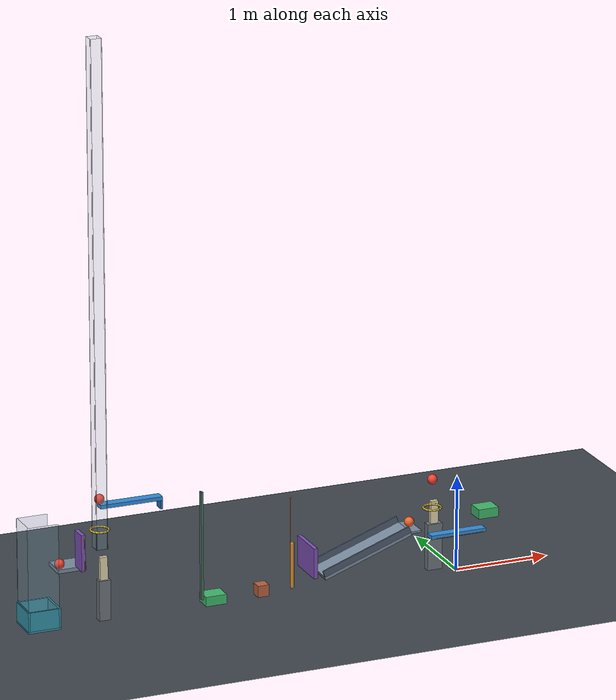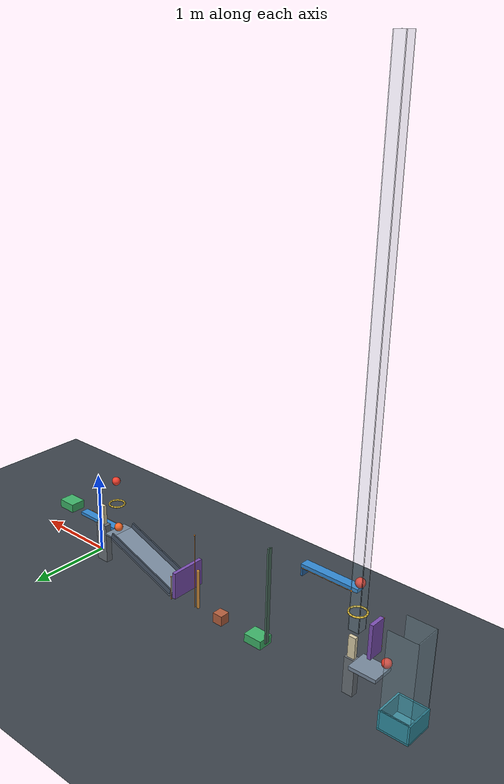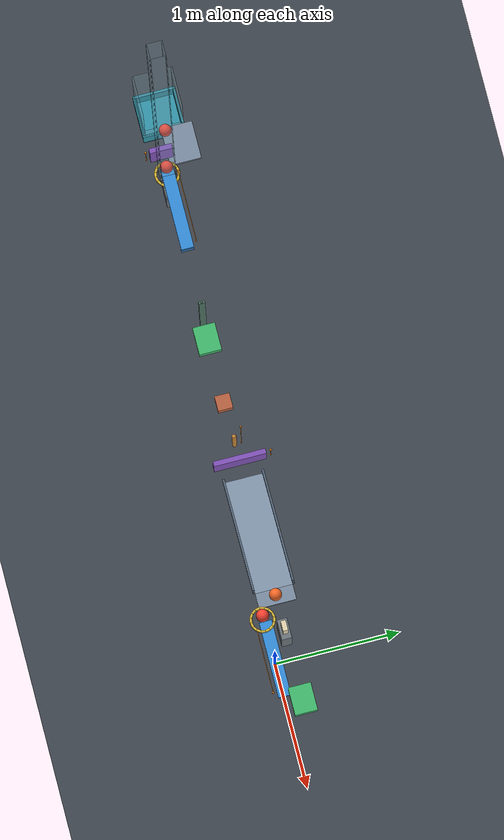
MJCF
<mujoco model="spring_assisted_chain">
  <compiler angle="degree" autolimits="true"/>
  <option timestep="0.002" gravity="0 0 -9.81" integrator="implicitfast" cone="elliptic" solver="Newton" iterations="100" tolerance="1e-10"/>

  <visual>
    <headlight ambient="0.35 0.35 0.35" diffuse="0.65 0.65 0.65" specular="0.15 0.15 0.15"/>
    <map znear="0.01" zfar="30"/>
  </visual>

  <!-- Passive, spring-assisted implementation; the full cascade is not simulation-verified. -->
  <!-- MuJoCo has compliant contacts rather than a direct restitution coefficient. -->
  <!-- solref damping ratio 0.7156 approximates restitution 0.04. -->
  <!-- All initial velocities are zero. Springs supply energy only after mechanical triggering. -->

  <worldbody>
    <light name="scene_light" pos="-1.5 -3 7" dir="0 0.3 -1" diffuse="0.8 0.8 0.8"/>
    <camera name="overview" pos="-1.8 -6 3.8" xyaxes="1 0 0 0 0.48 0.877268"/>
    <geom name="floor" type="plane" pos="0 0 0" size="10 5 0.1" friction="0.72 0.005 0.0001" condim="6" solref="0.004 0.7156" rgba="0.24 0.27 0.30 1"/>

    <!-- Ball1 starts 0.30 m above ring1. Its initial lever-contact center is 0.25 m below ring1. -->
    <body name="ball1" pos="-0.285 -0.025 1.022020">
      <freejoint name="ball1_free"/>
      <geom name="ball1_sphere" type="sphere" size="0.05" mass="0.20" friction="0.72 0.005 0.0001" condim="6" solref="0.004 0.7156" rgba="0.95 0.25 0.18 1"/>
    </body>

    <!-- Capsule centerlines form a polygon with an approximately 0.16 m clear diameter. -->
    <body name="ring1" pos="-0.285 -0.025 0.722020">
      <geom name="ring1_segment00" type="capsule" fromto="0.0917632 0 0 0.0847781 0.0351163 0" size="0.01" friction="0.72 0.005 0.0001" condim="6" solref="0.004 0.7156" rgba="0.85 0.72 0.22 1"/>
      <geom name="ring1_segment01" type="capsule" fromto="0.0847781 0.0351163 0 0.0648864 0.0648864 0" size="0.01" friction="0.72 0.005 0.0001" condim="6" solref="0.004 0.7156" rgba="0.85 0.72 0.22 1"/>
      <geom name="ring1_segment02" type="capsule" fromto="0.0648864 0.0648864 0 0.0351163 0.0847781 0" size="0.01" friction="0.72 0.005 0.0001" condim="6" solref="0.004 0.7156" rgba="0.85 0.72 0.22 1"/>
      <geom name="ring1_segment03" type="capsule" fromto="0.0351163 0.0847781 0 0 0.0917632 0" size="0.01" friction="0.72 0.005 0.0001" condim="6" solref="0.004 0.7156" rgba="0.85 0.72 0.22 1"/>
      <geom name="ring1_segment04" type="capsule" fromto="0 0.0917632 0 -0.0351163 0.0847781 0" size="0.01" friction="0.72 0.005 0.0001" condim="6" solref="0.004 0.7156" rgba="0.85 0.72 0.22 1"/>
      <geom name="ring1_segment05" type="capsule" fromto="-0.0351163 0.0847781 0 -0.0648864 0.0648864 0" size="0.01" friction="0.72 0.005 0.0001" condim="6" solref="0.004 0.7156" rgba="0.85 0.72 0.22 1"/>
      <geom name="ring1_segment06" type="capsule" fromto="-0.0648864 0.0648864 0 -0.0847781 0.0351163 0" size="0.01" friction="0.72 0.005 0.0001" condim="6" solref="0.004 0.7156" rgba="0.85 0.72 0.22 1"/>
      <geom name="ring1_segment07" type="capsule" fromto="-0.0847781 0.0351163 0 -0.0917632 0 0" size="0.01" friction="0.72 0.005 0.0001" condim="6" solref="0.004 0.7156" rgba="0.85 0.72 0.22 1"/>
      <geom name="ring1_segment08" type="capsule" fromto="-0.0917632 0 0 -0.0847781 -0.0351163 0" size="0.01" friction="0.72 0.005 0.0001" condim="6" solref="0.004 0.7156" rgba="0.85 0.72 0.22 1"/>
      <geom name="ring1_segment09" type="capsule" fromto="-0.0847781 -0.0351163 0 -0.0648864 -0.0648864 0" size="0.01" friction="0.72 0.005 0.0001" condim="6" solref="0.004 0.7156" rgba="0.85 0.72 0.22 1"/>
      <geom name="ring1_segment10" type="capsule" fromto="-0.0648864 -0.0648864 0 -0.0351163 -0.0847781 0" size="0.01" friction="0.72 0.005 0.0001" condim="6" solref="0.004 0.7156" rgba="0.85 0.72 0.22 1"/>
      <geom name="ring1_segment11" type="capsule" fromto="-0.0351163 -0.0847781 0 0 -0.0917632 0" size="0.01" friction="0.72 0.005 0.0001" condim="6" solref="0.004 0.7156" rgba="0.85 0.72 0.22 1"/>
      <geom name="ring1_segment12" type="capsule" fromto="0 -0.0917632 0 0.0351163 -0.0847781 0" size="0.01" friction="0.72 0.005 0.0001" condim="6" solref="0.004 0.7156" rgba="0.85 0.72 0.22 1"/>
      <geom name="ring1_segment13" type="capsule" fromto="0.0351163 -0.0847781 0 0.0648864 -0.0648864 0" size="0.01" friction="0.72 0.005 0.0001" condim="6" solref="0.004 0.7156" rgba="0.85 0.72 0.22 1"/>
      <geom name="ring1_segment14" type="capsule" fromto="0.0648864 -0.0648864 0 0.0847781 -0.0351163 0" size="0.01" friction="0.72 0.005 0.0001" condim="6" solref="0.004 0.7156" rgba="0.85 0.72 0.22 1"/>
      <geom name="ring1_segment15" type="capsule" fromto="0.0847781 -0.0351163 0 0.0917632 0 0" size="0.01" friction="0.72 0.005 0.0001" condim="6" solref="0.004 0.7156" rgba="0.85 0.72 0.22 1"/>
    </body>

    <body name="lever1" pos="0 0 0.402020">
      <joint name="lever1_hinge" type="hinge" axis="0 -1 0" damping="0.04" limited="true" range="0 45" solreflimit="0.004 1" solimplimit="0.99 0.999 0.0001"/>
      <geom name="lever1_beam" type="box" size="0.30 0.05 0.02" mass="0.50" friction="0.72 0.005 0.0001" condim="6" solref="0.004 0.7156" rgba="0.20 0.55 0.85 1"/>
      <site name="lever1_spring_tip" pos="-0.25 -0.08 0" size="0.006" rgba="1 0.55 0.1 1"/>
    </body>

    <!-- Cart1's horizontal bearing supplies support without a rubbing track. -->
    <!-- Its leading face reaches domino1 after 0.42 m of travel. -->
    <body name="cart1" pos="0.37 0.125 0.542020">
      <joint name="cart1_slide" type="slide" axis="-1 0 0" damping="0.20" limited="true" range="0 0.46" solreflimit="0.004 1" solimplimit="0.99 0.999 0.0001"/>
      <geom name="cart1_box" type="box" size="0.11 0.09 0.05" mass="0.50" friction="0.72 0.005 0.0001" condim="6" solref="0.004 0.7156" rgba="0.25 0.72 0.42 1"/>
    </body>

    <body name="domino1_plinth" pos="-0.20 0.125 0.246010">
      <geom name="domino1_plinth_box" type="box" size="0.08 0.04 0.246010" friction="0.72 0.005 0.0001" condim="6" solref="0.004 0.7156" rgba="0.43 0.46 0.49 1"/>
    </body>

    <body name="domino1" pos="-0.20 0.125 0.612020">
      <freejoint name="domino1_free"/>
      <geom name="domino1_box" type="box" size="0.04 0.02 0.12" mass="0.25" friction="0.72 0.005 0.0001" condim="6" solref="0.004 0.7156" rgba="0.88 0.83 0.68 1"/>
    </body>

    <!-- A level entry pad holds ball2 until domino1 strikes it. -->
    <!-- Initial surface gap from domino1 to ball2 is 0.18 m. -->
    <body name="ball2" pos="-0.47 0.125 0.542020">
      <freejoint name="ball2_free"/>
      <geom name="ball2_sphere" type="sphere" size="0.05" mass="0.20" friction="0.72 0.005 0.0001" condim="6" solref="0.004 0.7156" rgba="0.95 0.40 0.15 1"/>
    </body>

    <!-- Ramp's sloping top is 1.00 m long and 0.30 m wide at 20 degrees. -->
    <!-- Low endpoint is approximately (-1.459693, 0.125, 0.15). -->
    <body name="ramp1" pos="-0.989846 0.125 0.321010">
      <geom name="ramp1_slope" type="box" pos="0.006840 0 -0.018794" quat="0.984807753 0 -0.173648178 0" size="0.50 0.15 0.02" friction="0.72 0.005 0.0001" condim="6" solref="0.004 0.7156" rgba="0.48 0.55 0.63 1"/>
      <geom name="ramp1_entry_pad" type="box" pos="0.529846 0 0.161010" size="0.06 0.15 0.01" friction="0.72 0.005 0.0001" condim="6" solref="0.004 0.7156" rgba="0.48 0.55 0.63 1"/>
      <geom name="ramp1_rail_north" type="box" pos="-0.011971 0.158 0.032889" quat="0.984807753 0 -0.173648178 0" size="0.50 0.008 0.035" friction="0.72 0.005 0.0001" condim="6" solref="0.004 0.7156" rgba="0.30 0.36 0.43 1"/>
      <geom name="ramp1_rail_south" type="box" pos="-0.011971 -0.158 0.032889" quat="0.984807753 0 -0.173648178 0" size="0.50 0.008 0.035" friction="0.72 0.005 0.0001" condim="6" solref="0.004 0.7156" rgba="0.30 0.36 0.43 1"/>
    </body>

    <!-- Door's incoming face is 0.10 m beyond the low ramp endpoint. -->
    <!-- Door dimensions: 0.42 across y, 0.32 vertically, 0.04 thick. -->
    <body name="door1" pos="-1.579693 0.125 0.33">
      <joint name="door1_hinge" type="hinge" axis="0 1 0" damping="0.04" limited="true" range="0 70" solreflimit="0.004 1" solimplimit="0.99 0.999 0.0001"/>
      <geom name="door1_panel" type="box" size="0.02 0.21 0.16" mass="0.45" friction="0.72 0.005 0.0001" condim="6" solref="0.004 0.7156" rgba="0.50 0.32 0.72 1"/>
      <site name="door1_spring_tip" pos="0 0.25 -0.14" size="0.006" rgba="1 0.55 0.1 1"/>
    </body>

    <body name="pendulum1" pos="-1.747 0.125 0.515">
      <joint name="pendulum1_hinge" type="hinge" axis="0 1 0" damping="0.04" limited="true" range="0 38" solreflimit="0.004 1" solimplimit="0.99 0.999 0.0001"/>
      <geom name="pendulum1_rod" type="capsule" fromto="0 0 -0.018 0 0 -0.482" size="0.018" mass="0.35" friction="0.72 0.005 0.0001" condim="6" solref="0.004 0.7156" rgba="0.78 0.53 0.22 1"/>
      <site name="pendulum1_spring_tip" pos="0 0.055 -0.45" size="0.006" rgba="1 0.55 0.1 1"/>
    </body>

    <!-- A lightweight carriage prevents tumbling while allowing vertical settling onto the floor. -->
    <body name="block1_carriage" pos="-2.083 0.125 0.06">
      <inertial pos="0 0 0" mass="0.001" diaginertia="0.000001 0.000001 0.000001"/>
      <joint name="block1_carriage_slide" type="slide" axis="-1 0 0" damping="0.20"/>
      <joint name="block1_carriage_settle" type="slide" axis="0 0 1" damping="0.20" limited="true" range="-0.003 0.003"/>
    </body>

    <body name="block1" pos="-2.083 0.125 0.06">
      <freejoint name="block1_free"/>
      <geom name="block1_cube" type="box" size="0.06 0.06 0.06" mass="0.35" friction="0.72 0.005 0.0001" condim="6" solref="0.004 0.7156" rgba="0.72 0.38 0.25 1"/>
    </body>

    <!-- Block1's leading face reaches cart2 after 0.35 m. -->
    <!-- Cart2 has a massless striker mast for the elevated seesaw. -->
    <!-- Its primary box is 0.22 by 0.18 by 0.10 m and its total mass is 0.50 kg. -->
    <body name="cart2" pos="-2.603 0.125 0.051">
      <joint name="cart2_slide" type="slide" axis="-1 0 0" damping="0.20" limited="true" range="0 0.47" solreflimit="0.004 1" solimplimit="0.99 0.999 0.0001"/>
      <geom name="cart2_box" type="box" size="0.11 0.09 0.05" mass="0.50" friction="0.72 0.005 0.0001" condim="6" solref="0.004 0.7156" rgba="0.25 0.72 0.42 1"/>
      <geom name="cart2_striker_mast" type="box" pos="-0.12 0 0.57" size="0.01 0.025 0.57" mass="0" friction="0.72 0.005 0.0001" condim="6" solref="0.004 0.7156" rgba="0.30 0.44 0.38 1"/>
      <geom name="cart2_striker_head" type="sphere" pos="-0.12 0 1.135" size="0.01" mass="0" friction="0.72 0.005 0.0001" condim="6" solref="0.004 0.7156" rgba="0.30 0.44 0.38 1"/>
    </body>

    <!-- Seesaw's working left end is toward +x; its ball-carrying right end is toward -x. -->
    <!-- Cart2 reaches the left-end flange after 0.42 m of travel. -->
    <body name="seesaw1" pos="-3.478 0.125 1.20">
      <joint name="seesaw1_hinge" type="hinge" axis="0 1 0" damping="0.04" limited="true" range="0 42" solreflimit="0.004 1" solimplimit="0.99 0.999 0.0001"/>
      <geom name="seesaw1_beam" type="box" size="0.325 0.05 0.02" mass="0.55" friction="0.72 0.005 0.0001" condim="6" solref="0.004 0.7156" rgba="0.20 0.55 0.85 1"/>
      <geom name="seesaw1_trigger_flange" type="box" pos="0.315 0 -0.065" size="0.01 0.05 0.045" mass="0" friction="0.72 0.005 0.0001" condim="6" solref="0.004 0.7156" rgba="0.17 0.43 0.68 1"/>
      <site name="seesaw1_spring_tip" pos="0.28 0.08 0" size="0.006" rgba="1 0.55 0.1 1"/>
    </body>

    <body name="ball3" pos="-3.798 0.125 1.27">
      <freejoint name="ball3_free"/>
      <geom name="ball3_sphere" type="sphere" size="0.05" mass="0.20" contype="2" conaffinity="1" friction="0.72 0.005 0.0001" condim="6" solref="0.004 0.7156" rgba="0.95 0.25 0.18 1"/>
    </body>

    <!-- These guides collide only with ball3, not with the seesaw. -->
    <!-- They constrain lateral launch motion and terminate above domino2. -->
    <body name="ball3_vertical_guide" pos="-3.798 0.125 3.36">
      <geom name="ball3_vertical_guide_east" type="box" pos="0.056 0 0" size="0.003 0.06 2.60" contype="4" conaffinity="2" friction="0.72 0.005 0.0001" condim="6" solref="0.004 0.7156" rgba="0.60 0.78 0.85 0.18"/>
      <geom name="ball3_vertical_guide_west" type="box" pos="-0.056 0 0" size="0.003 0.06 2.60" contype="4" conaffinity="2" friction="0.72 0.005 0.0001" condim="6" solref="0.004 0.7156" rgba="0.60 0.78 0.85 0.18"/>
      <geom name="ball3_vertical_guide_north" type="box" pos="0 0.056 0" size="0.06 0.003 2.60" contype="4" conaffinity="2" friction="0.72 0.005 0.0001" condim="6" solref="0.004 0.7156" rgba="0.60 0.78 0.85 0.18"/>
      <geom name="ball3_vertical_guide_south" type="box" pos="0 -0.056 0" size="0.06 0.003 2.60" contype="4" conaffinity="2" friction="0.72 0.005 0.0001" condim="6" solref="0.004 0.7156" rgba="0.60 0.78 0.85 0.18"/>
    </body>

    <!-- Ring2 is centered 0.32 m below ball3's initial center. -->
    <body name="ring2" pos="-3.798 0.125 0.95">
      <geom name="ring2_segment00" type="capsule" fromto="0.0917632 0 0 0.0847781 0.0351163 0" size="0.01" friction="0.72 0.005 0.0001" condim="6" solref="0.004 0.7156" rgba="0.85 0.72 0.22 1"/>
      <geom name="ring2_segment01" type="capsule" fromto="0.0847781 0.0351163 0 0.0648864 0.0648864 0" size="0.01" friction="0.72 0.005 0.0001" condim="6" solref="0.004 0.7156" rgba="0.85 0.72 0.22 1"/>
      <geom name="ring2_segment02" type="capsule" fromto="0.0648864 0.0648864 0 0.0351163 0.0847781 0" size="0.01" friction="0.72 0.005 0.0001" condim="6" solref="0.004 0.7156" rgba="0.85 0.72 0.22 1"/>
      <geom name="ring2_segment03" type="capsule" fromto="0.0351163 0.0847781 0 0 0.0917632 0" size="0.01" friction="0.72 0.005 0.0001" condim="6" solref="0.004 0.7156" rgba="0.85 0.72 0.22 1"/>
      <geom name="ring2_segment04" type="capsule" fromto="0 0.0917632 0 -0.0351163 0.0847781 0" size="0.01" friction="0.72 0.005 0.0001" condim="6" solref="0.004 0.7156" rgba="0.85 0.72 0.22 1"/>
      <geom name="ring2_segment05" type="capsule" fromto="-0.0351163 0.0847781 0 -0.0648864 0.0648864 0" size="0.01" friction="0.72 0.005 0.0001" condim="6" solref="0.004 0.7156" rgba="0.85 0.72 0.22 1"/>
      <geom name="ring2_segment06" type="capsule" fromto="-0.0648864 0.0648864 0 -0.0847781 0.0351163 0" size="0.01" friction="0.72 0.005 0.0001" condim="6" solref="0.004 0.7156" rgba="0.85 0.72 0.22 1"/>
      <geom name="ring2_segment07" type="capsule" fromto="-0.0847781 0.0351163 0 -0.0917632 0 0" size="0.01" friction="0.72 0.005 0.0001" condim="6" solref="0.004 0.7156" rgba="0.85 0.72 0.22 1"/>
      <geom name="ring2_segment08" type="capsule" fromto="-0.0917632 0 0 -0.0847781 -0.0351163 0" size="0.01" friction="0.72 0.005 0.0001" condim="6" solref="0.004 0.7156" rgba="0.85 0.72 0.22 1"/>
      <geom name="ring2_segment09" type="capsule" fromto="-0.0847781 -0.0351163 0 -0.0648864 -0.0648864 0" size="0.01" friction="0.72 0.005 0.0001" condim="6" solref="0.004 0.7156" rgba="0.85 0.72 0.22 1"/>
      <geom name="ring2_segment10" type="capsule" fromto="-0.0648864 -0.0648864 0 -0.0351163 -0.0847781 0" size="0.01" friction="0.72 0.005 0.0001" condim="6" solref="0.004 0.7156" rgba="0.85 0.72 0.22 1"/>
      <geom name="ring2_segment11" type="capsule" fromto="-0.0351163 -0.0847781 0 0 -0.0917632 0" size="0.01" friction="0.72 0.005 0.0001" condim="6" solref="0.004 0.7156" rgba="0.85 0.72 0.22 1"/>
      <geom name="ring2_segment12" type="capsule" fromto="0 -0.0917632 0 0.0351163 -0.0847781 0" size="0.01" friction="0.72 0.005 0.0001" condim="6" solref="0.004 0.7156" rgba="0.85 0.72 0.22 1"/>
      <geom name="ring2_segment13" type="capsule" fromto="0.0351163 -0.0847781 0 0.0648864 -0.0648864 0" size="0.01" friction="0.72 0.005 0.0001" condim="6" solref="0.004 0.7156" rgba="0.85 0.72 0.22 1"/>
      <geom name="ring2_segment14" type="capsule" fromto="0.0648864 -0.0648864 0 0.0847781 -0.0351163 0" size="0.01" friction="0.72 0.005 0.0001" condim="6" solref="0.004 0.7156" rgba="0.85 0.72 0.22 1"/>
      <geom name="ring2_segment15" type="capsule" fromto="0.0847781 -0.0351163 0 0.0917632 0 0" size="0.01" friction="0.72 0.005 0.0001" condim="6" solref="0.004 0.7156" rgba="0.85 0.72 0.22 1"/>
    </body>

    <body name="domino2_plinth" pos="-3.766 0.125 0.21">
      <geom name="domino2_plinth_box" type="box" size="0.06 0.04 0.21" friction="0.72 0.005 0.0001" condim="6" solref="0.004 0.7156" rgba="0.43 0.46 0.49 1"/>
    </body>

    <!-- Domino2 top is at z=0.66: descending ball contact center is z=0.71. -->
    <!-- Thus ball3 descends another 0.24 m after ring2 before contact. -->
    <!-- Ball3 strikes toward the domino's -x edge to initiate toppling. -->
    <body name="domino2" pos="-3.766 0.125 0.54">
      <freejoint name="domino2_free"/>
      <geom name="domino2_box" type="box" size="0.04 0.02 0.12" mass="0.25" friction="0.72 0.005 0.0001" condim="6" solref="0.004 0.7156" rgba="0.88 0.83 0.68 1"/>
    </body>

    <!-- Initial surface gap between domino2 and flap1 is 0.18 m. -->
    <!-- Flap dimensions: 0.38 vertically, 0.18 across y, 0.04 thick. -->
    <body name="flap1" pos="-4.006 0.125 0.76">
      <joint name="flap1_hinge" type="hinge" axis="0 1 0" damping="0.04" limited="true" range="0 60" solreflimit="0.004 1" solimplimit="0.99 0.999 0.0001"/>
      <geom name="flap1_panel" type="box" size="0.02 0.09 0.19" mass="0.28" friction="0.72 0.005 0.0001" condim="6" solref="0.004 0.7156" rgba="0.50 0.32 0.72 1"/>
      <site name="flap1_spring_tip" pos="0 -0.12 -0.16" size="0.006" rgba="1 0.55 0.1 1"/>
    </body>

    <!-- Shelf is offset sideways so it does not obstruct domino2. -->
    <!-- Shelf top is 0.55 m above the cup's inner bottom. -->
    <body name="shelf1" pos="-4.075 0.30 0.55">
      <geom name="shelf1_box" type="box" size="0.15 0.125 0.02" friction="0.72 0.005 0.0001" condim="6" solref="0.004 0.7156" rgba="0.48 0.55 0.63 1"/>
    </body>

    <body name="ball4" pos="-4.195 0.205 0.62">
      <freejoint name="ball4_free"/>
      <geom name="ball4_sphere" type="sphere" size="0.05" mass="0.20" friction="0.72 0.005 0.0001" condim="6" solref="0.004 0.7156" rgba="0.95 0.25 0.18 1"/>
    </body>

    <!-- Separate catch chute dissipates horizontal motion before the final drop. -->
    <!-- Its upper incoming side is open toward +x. -->
    <body name="catch_chute" pos="-4.42 0.205 0">
      <geom name="catch_chute_west" type="box" pos="-0.155 0 0.66" size="0.005 0.15 0.44" friction="0.72 0.005 0.0001" condim="6" solref="0.004 0.7156" rgba="0.55 0.72 0.78 0.28"/>
      <geom name="catch_chute_north" type="box" pos="0 0.155 0.66" size="0.16 0.005 0.44" friction="0.72 0.005 0.0001" condim="6" solref="0.004 0.7156" rgba="0.55 0.72 0.78 0.28"/>
      <geom name="catch_chute_south" type="box" pos="0 -0.155 0.66" size="0.16 0.005 0.44" friction="0.72 0.005 0.0001" condim="6" solref="0.004 0.7156" rgba="0.55 0.72 0.78 0.28"/>
      <geom name="catch_chute_east_lower" type="box" pos="0.155 0 0.31" size="0.005 0.15 0.09" friction="0.72 0.005 0.0001" condim="6" solref="0.004 0.7156" rgba="0.55 0.72 0.78 0.28"/>
    </body>

    <!-- Cup has a 0.30 by 0.30 m inner footprint. -->
    <!-- Its walls are 0.20 m high above the inner bottom and 0.02 m thick. -->
    <body name="cup1" pos="-4.42 0.205 0">
      <geom name="cup1_bottom" type="box" pos="0 0 0.01" size="0.17 0.17 0.01" friction="0.72 0.005 0.0001" condim="6" solref="0.004 0.7156" rgba="0.20 0.58 0.66 1"/>
      <geom name="cup1_wall_west" type="box" pos="-0.16 0 0.12" size="0.01 0.17 0.10" friction="0.72 0.005 0.0001" condim="6" solref="0.004 0.7156" rgba="0.20 0.58 0.66 1"/>
      <geom name="cup1_wall_east" type="box" pos="0.16 0 0.12" size="0.01 0.17 0.10" friction="0.72 0.005 0.0001" condim="6" solref="0.004 0.7156" rgba="0.20 0.58 0.66 1"/>
      <geom name="cup1_wall_north" type="box" pos="0 0.16 0.12" size="0.15 0.01 0.10" friction="0.72 0.005 0.0001" condim="6" solref="0.004 0.7156" rgba="0.20 0.58 0.66 1"/>
      <geom name="cup1_wall_south" type="box" pos="0 -0.16 0.12" size="0.15 0.01 0.10" friction="0.72 0.005 0.0001" condim="6" solref="0.004 0.7156" rgba="0.20 0.58 0.66 1"/>
    </body>

    <!-- Fixed spring anchors lie opposite the moving attachments across each hinge. -->
    <!-- At initial alignment, spring forces produce zero hinge torque. -->
    <body name="spring_frame" pos="0 0 0">
      <site name="lever1_spring_anchor" pos="0.25 -0.08 0.402020" size="0.008" rgba="1 0.55 0.1 1"/>
      <site name="door1_spring_anchor" pos="-1.579693 0.375 0.47" size="0.008" rgba="1 0.55 0.1 1"/>
      <site name="pendulum1_spring_anchor" pos="-1.747 0.18 0.965" size="0.008" rgba="1 0.55 0.1 1"/>
      <site name="seesaw1_spring_anchor" pos="-3.758 0.205 1.20" size="0.008" rgba="1 0.55 0.1 1"/>
      <site name="flap1_spring_anchor" pos="-4.006 0.005 0.92" size="0.008" rgba="1 0.55 0.1 1"/>
    </body>
  </worldbody>

  <tendon>
    <spatial name="lever1_overcenter_spring" stiffness="250" damping="0" springlength="0.10" width="0.002" rgba="1 0.55 0.1 1">
      <site site="lever1_spring_anchor"/>
      <site site="lever1_spring_tip"/>
    </spatial>
    <spatial name="door1_overcenter_spring" stiffness="500" damping="0" springlength="0.08" width="0.002" rgba="1 0.55 0.1 1">
      <site site="door1_spring_anchor"/>
      <site site="door1_spring_tip"/>
    </spatial>
    <spatial name="pendulum1_overcenter_spring" stiffness="1600" damping="0" springlength="0.50" width="0.002" rgba="1 0.55 0.1 1">
      <site site="pendulum1_spring_anchor"/>
      <site site="pendulum1_spring_tip"/>
    </spatial>
    <spatial name="seesaw1_overcenter_spring" stiffness="450" damping="0" springlength="0.06" width="0.002" rgba="1 0.55 0.1 1">
      <site site="seesaw1_spring_anchor"/>
      <site site="seesaw1_spring_tip"/>
    </spatial>
    <spatial name="flap1_overcenter_spring" stiffness="40" damping="0" springlength="0.08" width="0.002" rgba="1 0.55 0.1 1">
      <site site="flap1_spring_anchor"/>
      <site site="flap1_spring_tip"/>
    </spatial>
  </tendon>

  <equality>
    <weld name="block1_linear_guide" body1="block1" body2="block1_carriage" solref="0.004 1" solimp="0.99 0.999 0.0001"/>
  </equality>

  <!-- Omitted key qpos uses the model's initial pose; omitted qvel is identically zero. -->
  <keyframe>
    <key name="start" time="0"/>
  </keyframe>
</mujoco>
